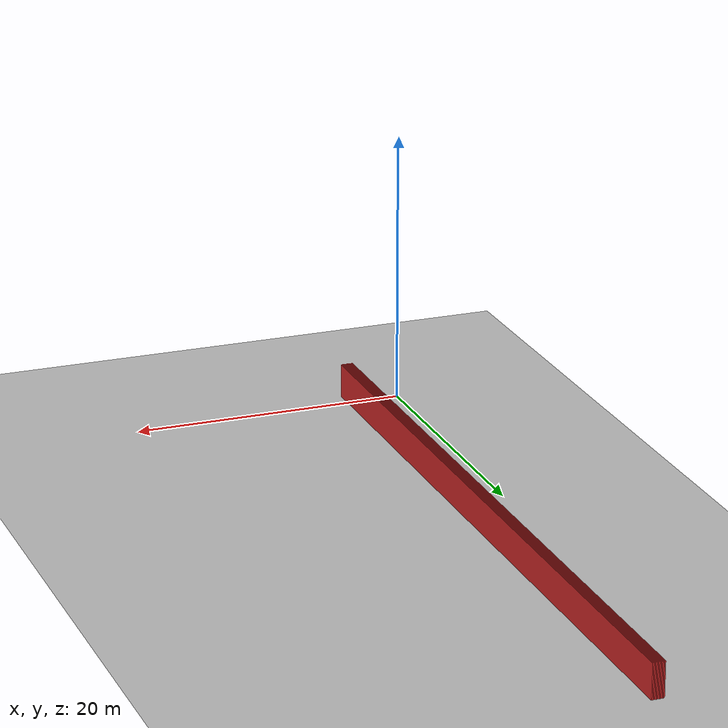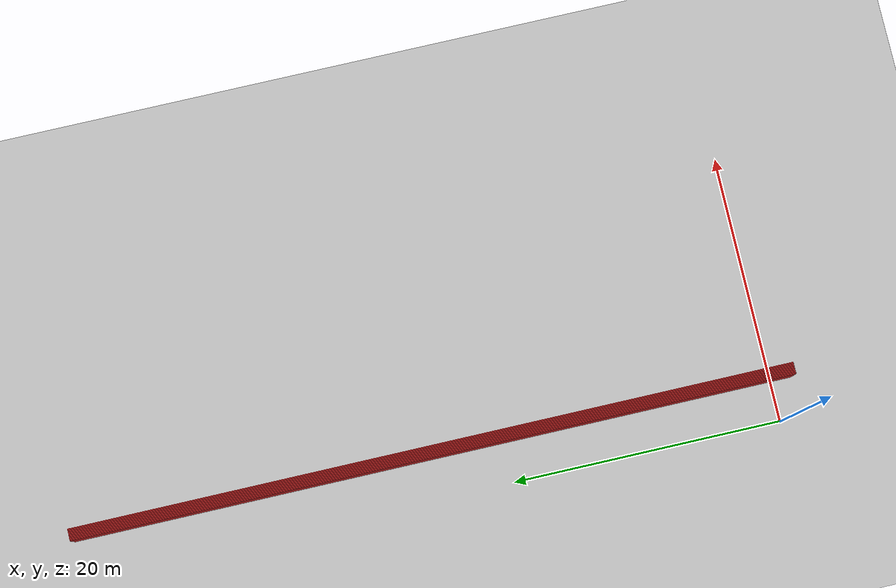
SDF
<sdf version="1.4">
 <world name="1_wall">
  <model name="ground_plane">
   <static>1</static>
   <link name="link">
    <collision name="collision">
     <geometry><plane><normal>0 0 1</normal><size>1000 1000</size></plane></geometry>
     <surface><friction><ode><mu>100</mu><mu2>50</mu2></ode></friction></surface>
    </collision>
    <visual name="visual">
     <cast_shadows>0</cast_shadows>
     <geometry><plane><normal>0 0 1</normal><size>10000 10000</size></plane></geometry>
     <material>
      <script><uri>file://media/materials/scripts/gazebo.material</uri><name>Gazebo/Grey</name></script>
     </material>
    </visual>
    <velocity_decay><linear>0</linear><angular>0</angular></velocity_decay>
   </link>
  </model>
  <model name="Wall_90">
   <static>1</static>
   <link name="Wall_90">
    <collision name="Wall_Collision_90">
     <geometry><box><size>53.65 0.05 2.5</size></box></geometry>
     <pose>0 0 1.25 0 -0 0</pose>
    </collision>
    <visual name="Wall_Visual_90">
     <pose>0 0 1.25 0 -0 0</pose>
     <geometry><box><size>53.65 0.05 2.5</size></box></geometry>
     <material>
      <script><uri>file://media/materials/scripts/gazebo.material</uri><name>Gazebo/Red</name></script>
     </material>
    </visual>
    <velocity_decay><linear>0</linear><angular>0</angular></velocity_decay>
    <pose>3.0 25.3 0 0 0 1.5707963267948966</pose>
   </link>
  </model>
  <model name="Wall_91">
   <static>1</static>
   <link name="Wall_91">
    <collision name="Wall_Collision_91">
     <geometry><box><size>53.65 0.05 2.5</size></box></geometry>
     <pose>0 0 1.25 0 -0 0</pose>
    </collision>
    <visual name="Wall_Visual_91">
     <pose>0 0 1.25 0 -0 0</pose>
     <geometry><box><size>53.65 0.05 2.5</size></box></geometry>
     <material>
      <script><uri>file://media/materials/scripts/gazebo.material</uri><name>Gazebo/Red</name></script>
     </material>
    </visual>
    <velocity_decay><linear>0</linear><angular>0</angular></velocity_decay>
    <pose>3.05 25.3 0 0 0 1.5707963267948966</pose>
   </link>
  </model>
  <model name="Wall_92">
   <static>1</static>
   <link name="Wall_92">
    <collision name="Wall_Collision_92">
     <geometry><box><size>53.65 0.05 2.5</size></box></geometry>
     <pose>0 0 1.25 0 -0 0</pose>
    </collision>
    <visual name="Wall_Visual_92">
     <pose>0 0 1.25 0 -0 0</pose>
     <geometry><box><size>53.65 0.05 2.5</size></box></geometry>
     <material>
      <script><uri>file://media/materials/scripts/gazebo.material</uri><name>Gazebo/Red</name></script>
     </material>
    </visual>
    <velocity_decay><linear>0</linear><angular>0</angular></velocity_decay>
    <pose>3.1 25.3 0 0 0 1.5707963267948966</pose>
   </link>
  </model>
  <model name="Wall_93">
   <static>1</static>
   <link name="Wall_93">
    <collision name="Wall_Collision_93">
     <geometry><box><size>53.65 0.05 2.5</size></box></geometry>
     <pose>0 0 1.25 0 -0 0</pose>
    </collision>
    <visual name="Wall_Visual_93">
     <pose>0 0 1.25 0 -0 0</pose>
     <geometry><box><size>53.65 0.05 2.5</size></box></geometry>
     <material>
      <script><uri>file://media/materials/scripts/gazebo.material</uri><name>Gazebo/Red</name></script>
     </material>
    </visual>
    <velocity_decay><linear>0</linear><angular>0</angular></velocity_decay>
    <pose>3.15 25.3 0 0 0 1.5707963267948966</pose>
   </link>
  </model>
  <model name="Wall_94">
   <static>1</static>
   <link name="Wall_94">
    <collision name="Wall_Collision_94">
     <geometry><box><size>53.65 0.05 2.5</size></box></geometry>
     <pose>0 0 1.25 0 -0 0</pose>
    </collision>
    <visual name="Wall_Visual_94">
     <pose>0 0 1.25 0 -0 0</pose>
     <geometry><box><size>53.65 0.05 2.5</size></box></geometry>
     <material>
      <script><uri>file://media/materials/scripts/gazebo.material</uri><name>Gazebo/Red</name></script>
     </material>
    </visual>
    <velocity_decay><linear>0</linear><angular>0</angular></velocity_decay>
    <pose>3.2 25.3 0 0 0 1.5707963267948966</pose>
   </link>
  </model>
  <model name="Wall_95">
   <static>1</static>
   <link name="Wall_95">
    <collision name="Wall_Collision_95">
     <geometry><box><size>53.65 0.05 2.5</size></box></geometry>
     <pose>0 0 1.25 0 -0 0</pose>
    </collision>
    <visual name="Wall_Visual_95">
     <pose>0 0 1.25 0 -0 0</pose>
     <geometry><box><size>53.65 0.05 2.5</size></box></geometry>
     <material>
      <script><uri>file://media/materials/scripts/gazebo.material</uri><name>Gazebo/Red</name></script>
     </material>
    </visual>
    <velocity_decay><linear>0</linear><angular>0</angular></velocity_decay>
    <pose>3.25 25.3 0 0 0 1.5707963267948966</pose>
   </link>
  </model>
  <model name="Wall_96">
   <static>1</static>
   <link name="Wall_96">
    <collision name="Wall_Collision_96">
     <geometry><box><size>53.65 0.05 2.5</size></box></geometry>
     <pose>0 0 1.25 0 -0 0</pose>
    </collision>
    <visual name="Wall_Visual_96">
     <pose>0 0 1.25 0 -0 0</pose>
     <geometry><box><size>53.65 0.05 2.5</size></box></geometry>
     <material>
      <script><uri>file://media/materials/scripts/gazebo.material</uri><name>Gazebo/Red</name></script>
     </material>
    </visual>
    <velocity_decay><linear>0</linear><angular>0</angular></velocity_decay>
    <pose>3.3 25.3 0 0 0 1.5707963267948966</pose>
   </link>
  </model>
  <model name="Wall_97">
   <static>1</static>
   <link name="Wall_97">
    <collision name="Wall_Collision_97">
     <geometry><box><size>53.65 0.05 2.5</size></box></geometry>
     <pose>0 0 1.25 0 -0 0</pose>
    </collision>
    <visual name="Wall_Visual_97">
     <pose>0 0 1.25 0 -0 0</pose>
     <geometry><box><size>53.65 0.05 2.5</size></box></geometry>
     <material>
      <script><uri>file://media/materials/scripts/gazebo.material</uri><name>Gazebo/Red</name></script>
     </material>
    </visual>
    <velocity_decay><linear>0</linear><angular>0</angular></velocity_decay>
    <pose>3.35 25.3 0 0 0 1.5707963267948966</pose>
   </link>
  </model>
  <model name="Wall_98">
   <static>1</static>
   <link name="Wall_98">
    <collision name="Wall_Collision_98">
     <geometry><box><size>53.65 0.05 2.5</size></box></geometry>
     <pose>0 0 1.25 0 -0 0</pose>
    </collision>
    <visual name="Wall_Visual_98">
     <pose>0 0 1.25 0 -0 0</pose>
     <geometry><box><size>53.65 0.05 2.5</size></box></geometry>
     <material>
      <script><uri>file://media/materials/scripts/gazebo.material</uri><name>Gazebo/Red</name></script>
     </material>
    </visual>
    <velocity_decay><linear>0</linear><angular>0</angular></velocity_decay>
    <pose>3.4 25.3 0 0 0 1.5707963267948966</pose>
   </link>
  </model>
  <model name="Wall_99">
   <static>1</static>
   <link name="Wall_99">
    <collision name="Wall_Collision_99">
     <geometry><box><size>53.65 0.05 2.5</size></box></geometry>
     <pose>0 0 1.25 0 -0 0</pose>
    </collision>
    <visual name="Wall_Visual_99">
     <pose>0 0 1.25 0 -0 0</pose>
     <geometry><box><size>53.65 0.05 2.5</size></box></geometry>
     <material>
      <script><uri>file://media/materials/scripts/gazebo.material</uri><name>Gazebo/Red</name></script>
     </material>
    </visual>
    <velocity_decay><linear>0</linear><angular>0</angular></velocity_decay>
    <pose>3.45 25.3 0 0 0 1.5707963267948966</pose>
   </link>
  </model>
  <model name="Wall_100">
   <static>1</static>
   <link name="Wall_100">
    <collision name="Wall_Collision_100">
     <geometry><box><size>53.65 0.05 2.5</size></box></geometry>
     <pose>0 0 1.25 0 -0 0</pose>
    </collision>
    <visual name="Wall_Visual_100">
     <pose>0 0 1.25 0 -0 0</pose>
     <geometry><box><size>53.65 0.05 2.5</size></box></geometry>
     <material>
      <script><uri>file://media/materials/scripts/gazebo.material</uri><name>Gazebo/Red</name></script>
     </material>
    </visual>
    <velocity_decay><linear>0</linear><angular>0</angular></velocity_decay>
    <pose>3.5 25.3 0 0 0 1.5707963267948966</pose>
   </link>
  </model>
  <model name="Wall_101">
   <static>1</static>
   <link name="Wall_101">
    <collision name="Wall_Collision_101">
     <geometry><box><size>53.65 0.05 2.5</size></box></geometry>
     <pose>0 0 1.25 0 -0 0</pose>
    </collision>
    <visual name="Wall_Visual_101">
     <pose>0 0 1.25 0 -0 0</pose>
     <geometry><box><size>53.65 0.05 2.5</size></box></geometry>
     <material>
      <script><uri>file://media/materials/scripts/gazebo.material</uri><name>Gazebo/Red</name></script>
     </material>
    </visual>
    <velocity_decay><linear>0</linear><angular>0</angular></velocity_decay>
    <pose>3.55 25.3 0 0 0 1.5707963267948966</pose>
   </link>
  </model>
  <model name="Wall_102">
   <static>1</static>
   <link name="Wall_102">
    <collision name="Wall_Collision_102">
     <geometry><box><size>53.65 0.05 2.5</size></box></geometry>
     <pose>0 0 1.25 0 -0 0</pose>
    </collision>
    <visual name="Wall_Visual_102">
     <pose>0 0 1.25 0 -0 0</pose>
     <geometry><box><size>53.65 0.05 2.5</size></box></geometry>
     <material>
      <script><uri>file://media/materials/scripts/gazebo.material</uri><name>Gazebo/Red</name></script>
     </material>
    </visual>
    <velocity_decay><linear>0</linear><angular>0</angular></velocity_decay>
    <pose>3.6 25.3 0 0 0 1.5707963267948966</pose>
   </link>
  </model>
  <model name="Wall_103">
   <static>1</static>
   <link name="Wall_103">
    <collision name="Wall_Collision_103">
     <geometry><box><size>53.65 0.05 2.5</size></box></geometry>
     <pose>0 0 1.25 0 -0 0</pose>
    </collision>
    <visual name="Wall_Visual_103">
     <pose>0 0 1.25 0 -0 0</pose>
     <geometry><box><size>53.65 0.05 2.5</size></box></geometry>
     <material>
      <script><uri>file://media/materials/scripts/gazebo.material</uri><name>Gazebo/Red</name></script>
     </material>
    </visual>
    <velocity_decay><linear>0</linear><angular>0</angular></velocity_decay>
    <pose>3.65 25.3 0 0 0 1.5707963267948966</pose>
   </link>
  </model>
  <model name="Wall_104">
   <static>1</static>
   <link name="Wall_104">
    <collision name="Wall_Collision_104">
     <geometry><box><size>53.65 0.05 2.5</size></box></geometry>
     <pose>0 0 1.25 0 -0 0</pose>
    </collision>
    <visual name="Wall_Visual_104">
     <pose>0 0 1.25 0 -0 0</pose>
     <geometry><box><size>53.65 0.05 2.5</size></box></geometry>
     <material>
      <script><uri>file://media/materials/scripts/gazebo.material</uri><name>Gazebo/Red</name></script>
     </material>
    </visual>
    <velocity_decay><linear>0</linear><angular>0</angular></velocity_decay>
    <pose>3.7 25.3 0 0 0 1.5707963267948966</pose>
   </link>
  </model>
  <model name="Wall_105">
   <static>1</static>
   <link name="Wall_105">
    <collision name="Wall_Collision_105">
     <geometry><box><size>53.65 0.05 2.5</size></box></geometry>
     <pose>0 0 1.25 0 -0 0</pose>
    </collision>
    <visual name="Wall_Visual_105">
     <pose>0 0 1.25 0 -0 0</pose>
     <geometry><box><size>53.65 0.05 2.5</size></box></geometry>
     <material>
      <script><uri>file://media/materials/scripts/gazebo.material</uri><name>Gazebo/Red</name></script>
     </material>
    </visual>
    <velocity_decay><linear>0</linear><angular>0</angular></velocity_decay>
    <pose>3.75 25.3 0 0 0 1.5707963267948966</pose>
   </link>
  </model>
  <model name="Wall_106">
   <static>1</static>
   <link name="Wall_106">
    <collision name="Wall_Collision_106">
     <geometry><box><size>53.65 0.05 2.5</size></box></geometry>
     <pose>0 0 1.25 0 -0 0</pose>
    </collision>
    <visual name="Wall_Visual_106">
     <pose>0 0 1.25 0 -0 0</pose>
     <geometry><box><size>53.65 0.05 2.5</size></box></geometry>
     <material>
      <script><uri>file://media/materials/scripts/gazebo.material</uri><name>Gazebo/Red</name></script>
     </material>
    </visual>
    <velocity_decay><linear>0</linear><angular>0</angular></velocity_decay>
    <pose>3.8 25.3 0 0 0 1.5707963267948966</pose>
   </link>
  </model>
  <model name="Wall_107">
   <static>1</static>
   <link name="Wall_107">
    <collision name="Wall_Collision_107">
     <geometry><box><size>53.65 0.05 2.5</size></box></geometry>
     <pose>0 0 1.25 0 -0 0</pose>
    </collision>
    <visual name="Wall_Visual_107">
     <pose>0 0 1.25 0 -0 0</pose>
     <geometry><box><size>53.65 0.05 2.5</size></box></geometry>
     <material>
      <script><uri>file://media/materials/scripts/gazebo.material</uri><name>Gazebo/Red</name></script>
     </material>
    </visual>
    <velocity_decay><linear>0</linear><angular>0</angular></velocity_decay>
    <pose>3.85 25.3 0 0 0 1.5707963267948966</pose>
   </link>
  </model>
 </world>
</sdf>
